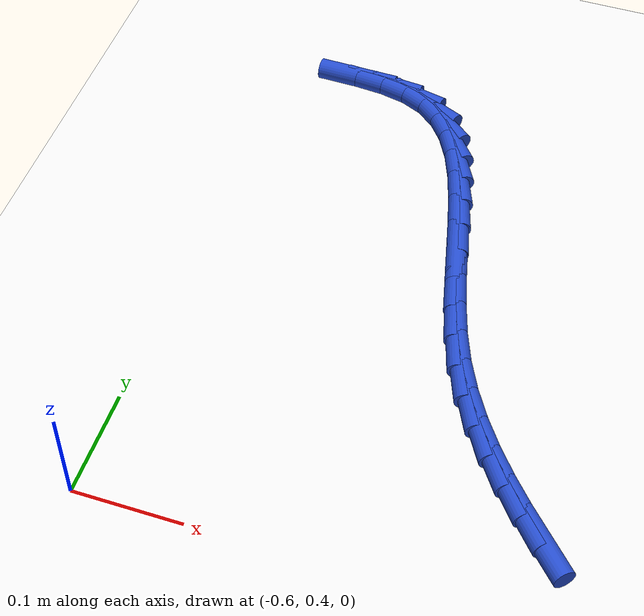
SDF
<sdf version="1.6">
 <world name="default">
  <model name="ground_plane">
   <static>1</static>
   <link name="link">
    <collision name="collision">
     <geometry><plane><normal>0 0 1</normal><size>100 100</size></plane></geometry>
     <surface><friction><ode><mu>100</mu><mu2>50</mu2></ode></friction></surface>
    </collision>
    <visual name="visual">
     <cast_shadows>0</cast_shadows>
     <geometry><plane><normal>0 0 1</normal><size>100 100</size></plane></geometry>
     <material>
      <script><uri>file://media/materials/scripts/gazebo.material</uri><name>Gazebo/WhiteGlow</name></script>
     </material>
    </visual>
   </link>
  </model>
  <model name="line">
   <link name="link_19">
    <pose>-0.2229935615928329 0.4728736843832283 0.01 0 1.57 -0.8160201989703334</pose>
    <collision name="collision">
     <geometry><cylinder><radius>0.01</radius><length>0.08</length></cylinder></geometry>
    </collision>
    <visual name="visual">
     <material>
      <script><name>Gazebo/Blue</name><uri>file://media/materials/scripts/gazebo.material</uri></script>
     </material>
     <geometry><cylinder><radius>0.01</radius><length>0.08</length></cylinder></geometry>
    </visual>
   </link>
   <link name="link_20">
    <pose>-0.24352990332600627 0.4947079046768894 0.01 0 1.57 -0.8544746093773524</pose>
    <collision name="collision">
     <geometry><cylinder><radius>0.01</radius><length>0.08</length></cylinder></geometry>
    </collision>
    <visual name="visual">
     <material>
      <script><name>Gazebo/Blue</name><uri>file://media/materials/scripts/gazebo.material</uri></script>
     </material>
     <geometry><cylinder><radius>0.01</radius><length>0.08</length></cylinder></geometry>
    </visual>
   </link>
   <link name="link_21">
    <pose>-0.26328727722935386 0.5174023740288467 0.01 0 1.57 -0.9038341413493509</pose>
    <collision name="collision">
     <geometry><cylinder><radius>0.01</radius><length>0.08</length></cylinder></geometry>
    </collision>
    <visual name="visual">
     <material>
      <script><name>Gazebo/Blue</name><uri>file://media/materials/scripts/gazebo.material</uri></script>
     </material>
     <geometry><cylinder><radius>0.01</radius><length>0.08</length></cylinder></geometry>
    </visual>
   </link>
   <link name="link_22">
    <pose>-0.28198799340580283 0.5411546996192315 0.01 0 1.57 -0.9638127523560778</pose>
    <collision name="collision">
     <geometry><cylinder><radius>0.01</radius><length>0.08</length></cylinder></geometry>
    </collision>
    <visual name="visual">
     <material>
      <script><name>Gazebo/Blue</name><uri>file://media/materials/scripts/gazebo.material</uri></script>
     </material>
     <geometry><cylinder><radius>0.01</radius><length>0.08</length></cylinder></geometry>
    </visual>
   </link>
   <link name="link_23">
    <pose>-0.29935436195828063 0.5661624886281751 0.01 0 1.57 -1.0337790124388864</pose>
    <collision name="collision">
     <geometry><cylinder><radius>0.01</radius><length>0.08</length></cylinder></geometry>
    </collision>
    <visual name="visual">
     <material>
      <script><name>Gazebo/Blue</name><uri>file://media/materials/scripts/gazebo.material</uri></script>
     </material>
     <geometry><cylinder><radius>0.01</radius><length>0.08</length></cylinder></geometry>
    </visual>
   </link>
   <link name="link_24">
    <pose>-0.31510869298971417 0.5926233482358081 0.01 0 1.57 -1.1126036904272005</pose>
    <collision name="collision">
     <geometry><cylinder><radius>0.01</radius><length>0.08</length></cylinder></geometry>
    </collision>
    <visual name="visual">
     <material>
      <script><name>Gazebo/Blue</name><uri>file://media/materials/scripts/gazebo.material</uri></script>
     </material>
     <geometry><cylinder><radius>0.01</radius><length>0.08</length></cylinder></geometry>
    </visual>
   </link>
   <link name="link_25">
    <pose>-0.3289732966030309 0.6207348856222621 0.01 0 1.57 -1.1969932518566078</pose>
    <collision name="collision">
     <geometry><cylinder><radius>0.01</radius><length>0.08</length></cylinder></geometry>
    </collision>
    <visual name="visual">
     <material>
      <script><name>Gazebo/Blue</name><uri>file://media/materials/scripts/gazebo.material</uri></script>
     </material>
     <geometry><cylinder><radius>0.01</radius><length>0.08</length></cylinder></geometry>
    </visual>
   </link>
   <link name="link_26">
    <pose>-0.34070950662291455 0.6506555081581253 0.01 0 1.57 -1.2668179192720221</pose>
    <collision name="collision">
     <geometry><cylinder><radius>0.01</radius><length>0.08</length></cylinder></geometry>
    </collision>
    <visual name="visual">
     <material>
      <script><name>Gazebo/Blue</name><uri>file://media/materials/scripts/gazebo.material</uri></script>
     </material>
     <geometry><cylinder><radius>0.01</radius><length>0.08</length></cylinder></geometry>
    </visual>
   </link>
   <link name="link_27">
    <pose>-0.35056087664897395 0.6820592275058446 0.01 0 1.57 -1.3119455169228171</pose>
    <collision name="collision">
     <geometry><cylinder><radius>0.01</radius><length>0.08</length></cylinder></geometry>
    </collision>
    <visual name="visual">
     <material>
      <script><name>Gazebo/Blue</name><uri>file://media/materials/scripts/gazebo.material</uri></script>
     </material>
     <geometry><cylinder><radius>0.01</radius><length>0.08</length></cylinder></geometry>
    </visual>
   </link>
   <link name="link_28">
    <pose>-0.3590961957406196 0.7142933522993802 0.01 0 1.57 -1.334761892262461</pose>
    <collision name="collision">
     <geometry><cylinder><radius>0.01</radius><length>0.08</length></cylinder></geometry>
    </collision>
    <visual name="visual">
     <material>
      <script><name>Gazebo/Blue</name><uri>file://media/materials/scripts/gazebo.material</uri></script>
     </material>
     <geometry><cylinder><radius>0.01</radius><length>0.08</length></cylinder></geometry>
    </visual>
   </link>
   <link name="link_29">
    <pose>-0.36689034504589085 0.7466990715945689 0.01 0 1.57 -1.3362167028174856</pose>
    <collision name="collision">
     <geometry><cylinder><radius>0.01</radius><length>0.08</length></cylinder></geometry>
    </collision>
    <visual name="visual">
     <material>
      <script><name>Gazebo/Blue</name><uri>file://media/materials/scripts/gazebo.material</uri></script>
     </material>
     <geometry><cylinder><radius>0.01</radius><length>0.08</length></cylinder></geometry>
    </visual>
   </link>
   <link name="link_30">
    <pose>-0.3745182057128275 0.7786175744472477 0.01 0 1.57 -1.315344658231414</pose>
    <collision name="collision">
     <geometry><cylinder><radius>0.01</radius><length>0.08</length></cylinder></geometry>
    </collision>
    <visual name="visual">
     <material>
      <script><name>Gazebo/Blue</name><uri>file://media/materials/scripts/gazebo.material</uri></script>
     </material>
     <geometry><cylinder><radius>0.01</radius><length>0.08</length></cylinder></geometry>
    </visual>
   </link>
   <link name="link_31">
    <pose>-0.382554658889469 0.8093900499132529 0.01 0 1.57 -1.2689326434410981</pose>
    <collision name="collision">
     <geometry><cylinder><radius>0.01</radius><length>0.08</length></cylinder></geometry>
    </collision>
    <visual name="visual">
     <material>
      <script><name>Gazebo/Blue</name><uri>file://media/materials/scripts/gazebo.material</uri></script>
     </material>
     <geometry><cylinder><radius>0.01</radius><length>0.08</length></cylinder></geometry>
    </visual>
   </link>
   <link name="link_32">
    <pose>-0.39157458572385495 0.8383576870484215 0.01 0 1.57 -1.1910484748648047</pose>
    <collision name="collision">
     <geometry><cylinder><radius>0.01</radius><length>0.08</length></cylinder></geometry>
    </collision>
    <visual name="visual">
     <material>
      <script><name>Gazebo/Blue</name><uri>file://media/materials/scripts/gazebo.material</uri></script>
     </material>
     <geometry><cylinder><radius>0.01</radius><length>0.08</length></cylinder></geometry>
    </visual>
   </link>
   <link name="link_33">
    <pose>-0.40215286736402484 0.86486167490859 0.01 0 1.57 -1.07283646956556</pose>
    <collision name="collision">
     <geometry><cylinder><radius>0.01</radius><length>0.08</length></cylinder></geometry>
    </collision>
    <visual name="visual">
     <material>
      <script><name>Gazebo/Blue</name><uri>file://media/materials/scripts/gazebo.material</uri></script>
     </material>
     <geometry><cylinder><radius>0.01</radius><length>0.08</length></cylinder></geometry>
    </visual>
   </link>
   <link name="link_34">
    <pose>-0.4148643849580185 0.8882432025495953 0.01 0 1.57 -0.9042143586479815</pose>
    <collision name="collision">
     <geometry><cylinder><radius>0.01</radius><length>0.08</length></cylinder></geometry>
    </collision>
    <visual name="visual">
     <material>
      <script><name>Gazebo/Blue</name><uri>file://media/materials/scripts/gazebo.material</uri></script>
     </material>
     <geometry><cylinder><radius>0.01</radius><length>0.08</length></cylinder></geometry>
    </visual>
   </link>
   <link name="link_35">
    <pose>-0.4302840196538752 0.9078434590272739 0.01 0 1.57 -0.681165214891603</pose>
    <collision name="collision">
     <geometry><cylinder><radius>0.01</radius><length>0.08</length></cylinder></geometry>
    </collision>
    <visual name="visual">
     <material>
      <script><name>Gazebo/Blue</name><uri>file://media/materials/scripts/gazebo.material</uri></script>
     </material>
     <geometry><cylinder><radius>0.01</radius><length>0.08</length></cylinder></geometry>
    </visual>
   </link>
   <link name="link_36">
    <pose>-0.4489866525996346 0.9230036333974625 0.01 0 1.57 -0.4230516756560272</pose>
    <collision name="collision">
     <geometry><cylinder><radius>0.01</radius><length>0.08</length></cylinder></geometry>
    </collision>
    <visual name="visual">
     <material>
      <script><name>Gazebo/Blue</name><uri>file://media/materials/scripts/gazebo.material</uri></script>
     </material>
     <geometry><cylinder><radius>0.01</radius><length>0.08</length></cylinder></geometry>
    </visual>
   </link>
   <link name="link_37">
    <pose>-0.4714944790223623 0.9331375079856906 0.01 0 1.57 -0.21220910343965724</pose>
    <collision name="collision">
     <geometry><cylinder><radius>0.01</radius><length>0.08</length></cylinder></geometry>
    </collision>
    <visual name="visual">
     <material>
      <script><name>Gazebo/Blue</name><uri>file://media/materials/scripts/gazebo.material</uri></script>
     </material>
     <geometry><cylinder><radius>0.01</radius><length>0.08</length></cylinder></geometry>
    </visual>
   </link>
   <link name="link_38">
    <pose>-0.49753865137191267 0.9387488030098703 0.01 0 1.57 -0.08458062376592698</pose>
    <collision name="collision">
     <geometry><cylinder><radius>0.01</radius><length>0.08</length></cylinder></geometry>
    </collision>
    <visual name="visual">
     <material>
      <script><name>Gazebo/Blue</name><uri>file://media/materials/scripts/gazebo.material</uri></script>
     </material>
     <geometry><cylinder><radius>0.01</radius><length>0.08</length></cylinder></geometry>
    </visual>
   </link>
   <link name="link_39">
    <pose>-0.526239989212518 0.9411821855471357 0.01 0 1.57 -0.020411069244320162</pose>
    <collision name="collision">
     <geometry><cylinder><radius>0.01</radius><length>0.08</length></cylinder></geometry>
    </collision>
    <visual name="visual">
     <material>
      <script><name>Gazebo/Blue</name><uri>file://media/materials/scripts/gazebo.material</uri></script>
     </material>
     <geometry><cylinder><radius>0.01</radius><length>0.08</length></cylinder></geometry>
    </visual>
   </link>
  </model>
 </world>
</sdf>
